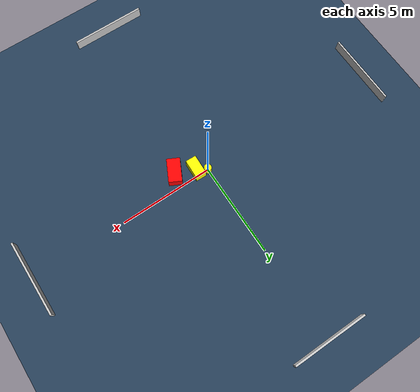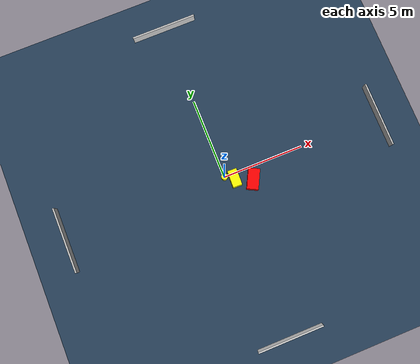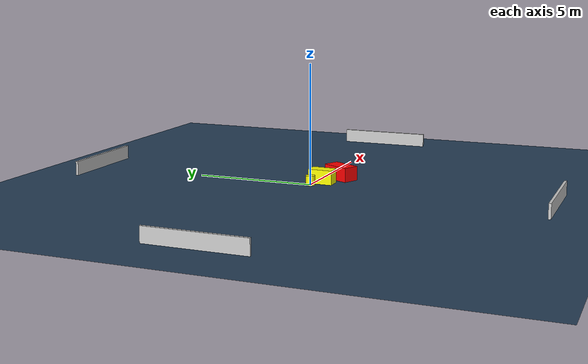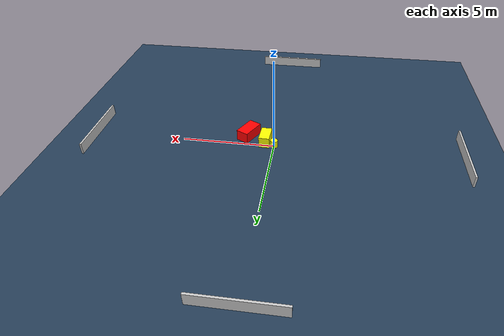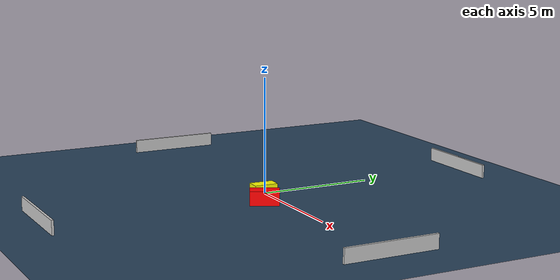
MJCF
<?xml version="1.0" ?>
<mujoco model="generated_environment">
  <option timestep="0.01" integrator="RK4" cone="elliptic"/>
  <default>
    <geom density="1"/>
  </default>
  <asset>
    <texture builtin="gradient" height="3072" name="skybox" rgb1="0.3 0.5 0.7" rgb2="0 0 0" type="skybox" width="512"/>
    <texture builtin="checker" height="300" name="groundplane" rgb1="0.2 0.3 0.4" rgb2="0.1 0.2 0.3" type="2d" width="300"/>
    <material name="groundplane" reflectance="0.2" texrepeat="5 5" texture="groundplane"/>
  </asset>
  <worldbody>
    <light dir="0 0 -1" directional="true" pos="0 0 1.5"/>
    <geom condim="3" friction="0.5 0.005 0.001" material="groundplane" name="floor" pos="0 0 0" size="0 0 0.05" type="plane"/>
    <body name="walls">
      <geom name="wall_1" condim="4" pos="-10.0 0.0 0.3" rgba="0.800000011920929 0.800000011920929 0.800000011920929 1.0" size="0.05 2.0 0.3" type="box"/>
      <geom name="wall_2" condim="4" pos="10.0 0.0 0.3" rgba="0.800000011920929 0.800000011920929 0.800000011920929 1.0" size="0.05 2.0 0.3" type="box"/>
      <geom name="wall_3" condim="4" pos="0.0 -10.0 0.3" rgba="0.800000011920929 0.800000011920929 0.800000011920929 1.0" size="2.0 0.05 0.3" type="box"/>
      <geom name="wall_4" condim="4" pos="0.0 10.0 0.3" rgba="0.800000011920929 0.800000011920929 0.800000011920929 1.0" size="2.0 0.05 0.3" type="box"/>
    </body>
    <body name="robot">
      <joint name="joint_x" type="slide" pos="0 0 0" axis="1 0 0"/>
      <joint name="joint_y" type="slide" pos="0 0 0" axis="0 1 0"/>
      <geom name="robot" type="cylinder" pos="0.0 0.0 0.2" size="0.2 0.2 0.0" mass="5.0" friction="1.0 0.005 0.0001" condim="4" rgba="1.0 1.0 0.0 1.0"/>
    </body>
    <body name="obstacle_1_movable">
      <geom name="obstacle_1_movable" condim="4" pos="0.5181052922649326 -0.31842895883828476 0.3" euler="0 0 268.02208583003414" friction="0.0 0.005 0.001" rgba="1.0 1.0 0.0 1.0" size="0.5131379313228517 0.28672166266548027 0.3" type="box" mass="0.1"/>
      <joint type="free"/>
    </body>
    <body name="obstacle_2_static">
      <geom name="obstacle_2_static" condim="4" pos="1.5172630157388622 -0.7780945438839522 0.3" euler="0 0 63.044573721723" friction="0.0 0.005 0.001" rgba="1.0 0.0 0.0 1.0" size="0.6239445853960397 0.34833523995917104 0.3" type="box"/>
    </body>
  </worldbody>
  <actuator>
    <motor name="actuator_x" joint="joint_x" gear="1" ctrlrange="-1 1"/>
    <motor name="actuator_y" joint="joint_y" gear="1" ctrlrange="-1 1"/>
  </actuator>
</mujoco>
